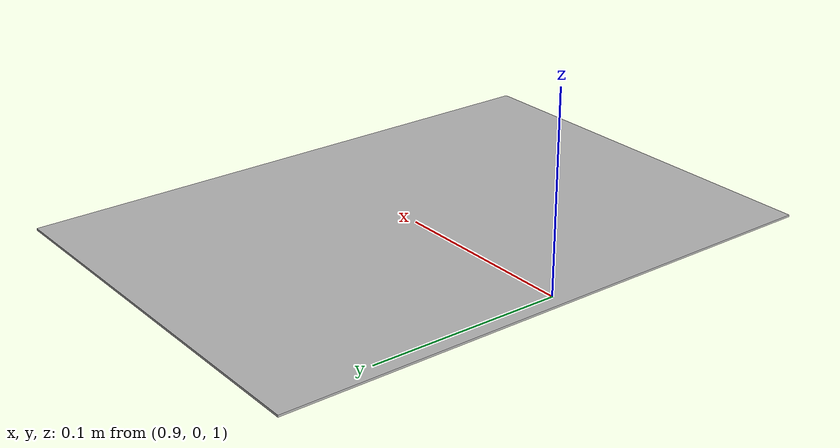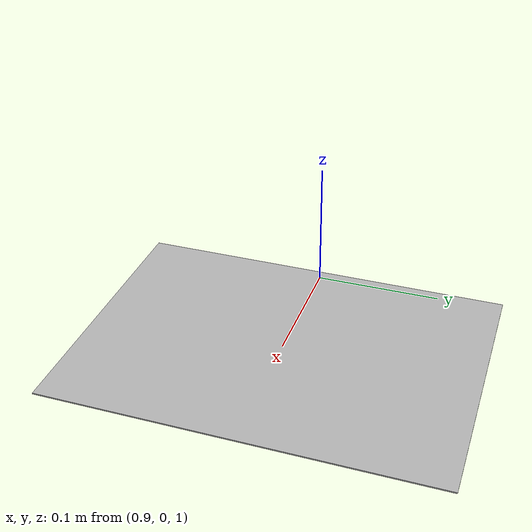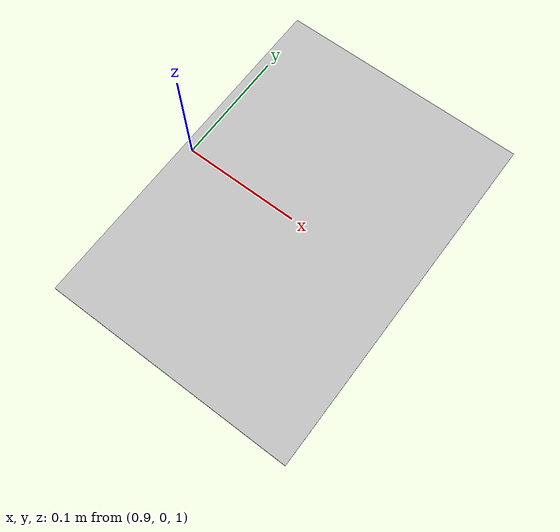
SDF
<?xml version="1.0" ?>
<sdf version="1.6">
  <world name="calibration_world">
    <!-- A global light source -->
    <include>
      <uri>model://sun</uri>
    </include>

    <!-- A ground plane -->
    <include>
      <uri>model://ground_plane</uri>
    </include>

    <include>
    	<uri>model://opencv_chessboard</uri>
    	<name>opencv_chessboard plate</name>
	<pose>1.0 0.0 1.0 3.14 0 0</pose>
    </include>

  </world>
</sdf>

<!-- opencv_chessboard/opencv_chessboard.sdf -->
<sdf version="1.6">
  <model name="opencv_chessboard">
    <pose>0 0 0.5 0 0 0</pose>
    <static>true</static>
    <link name="link">
      <inertial>
        <mass>1.0</mass>
        <inertia> <!-- inertias are tricky to compute -->
          <!-- http://gazebosim.org/tutorials?tut=inertia&cat=build_robot -->
          <ixx>0.083</ixx>       <!-- for a box: ixx = 0.083 * mass * (y*y + z*z) -->
          <ixy>0.0</ixy>         <!-- for a box: ixy = 0 -->
          <ixz>0.0</ixz>         <!-- for a box: ixz = 0 -->
          <iyy>0.083</iyy>       <!-- for a box: iyy = 0.083 * mass * (x*x + z*z) -->
          <iyz>0.0</iyz>         <!-- for a box: iyz = 0 -->
          <izz>0.083</izz>       <!-- for a box: izz = 0.083 * mass * (x*x + y*y) -->
        </inertia>
      </inertial>
      <collision name="collision">
        <geometry>
          <box>
            <size>0.216199 0.303780 0.001</size>   <!-- board size to have 0.025m square size-->
          </box>
        </geometry>
      </collision>
      <visual name="visual">
        <geometry>
          <box>
            <size>0.216199 0.303780 0.001</size>    <!-- board size to have 0.025m square size-->
          </box>
        </geometry>
        <material>
           <script>
            <uri>model://opencv_chessboard/materials/scripts</uri>
            <uri>model://opencv_chessboard/materials/textures</uri>
             <name>opencv_chessboard</name>
           </script>
        </material>
      </visual>
    </link>
  </model>
</sdf>
